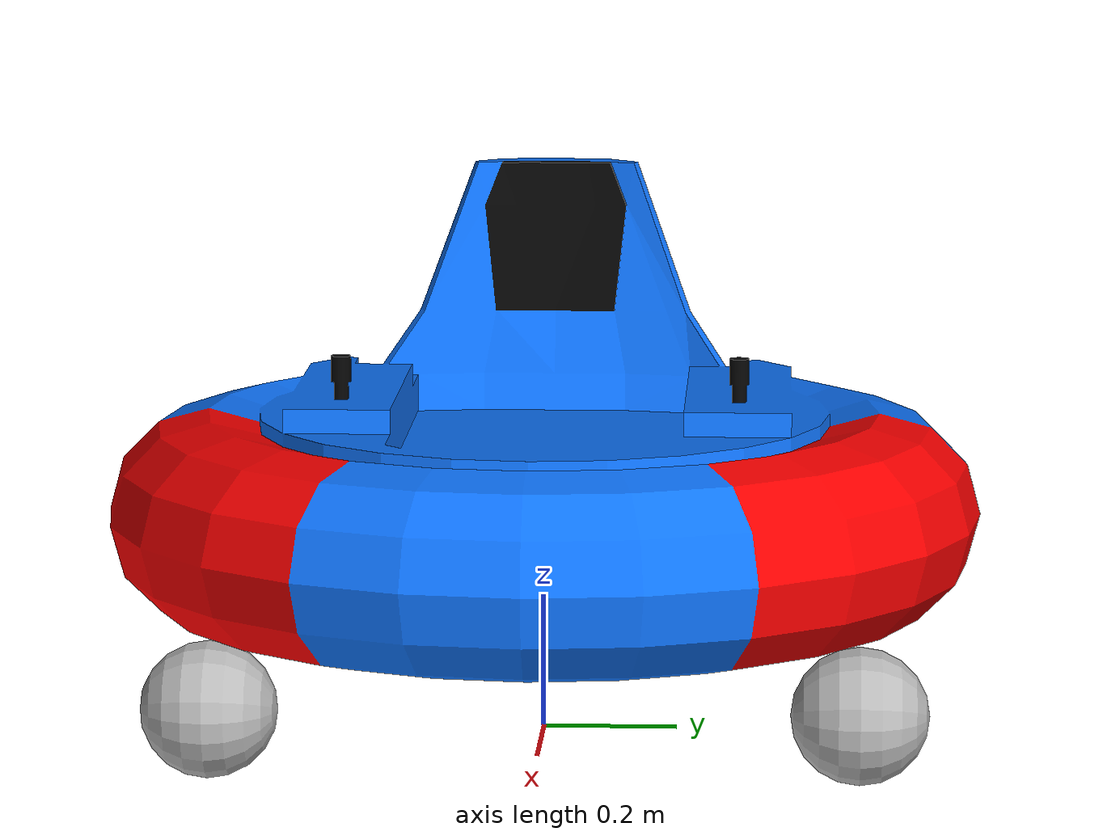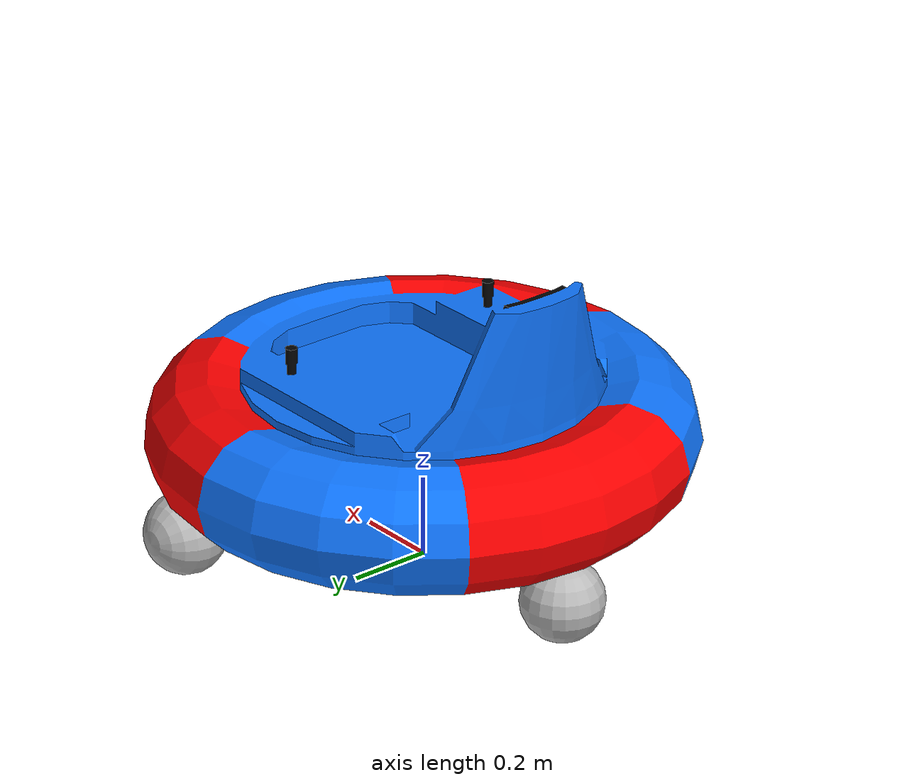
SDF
<?xml version="1.0" ?>
<sdf version="1.5">
    <model name="light-blue-cart">
      <pose>0 0 0.18 0 0 0</pose>
      <link name="cart">
          <inertial>
              <mass>50</mass>
          </inertial>
          <visual name="visual">
              <geometry>
                  <mesh><uri>file://light-blue-cart/meshes/TorusCart_lightblue_red.dae</uri></mesh>
              </geometry>
          </visual>
          <collision name="collision-cart">
              <pose>0 0 0.25 0 0 0</pose>
              <geometry>
                  <cylinder>
                      <radius>0.6</radius>
                      <length>0.75</length>
                  </cylinder>
              </geometry>
          </collision>
      </link>

      <link name='caster'>
        <pose>-0.5 0 -0.09 0 0 0</pose>
        <inertial>
          <mass>1</mass>
          <inertia>
            <ixx>0.1</ixx>
            <ixy>0</ixy>
            <ixz>0</ixz>
            <iyy>0.1</iyy>
            <iyz>0</iyz>
            <izz>0.1</izz>
          </inertia>
        </inertial>
        <visual name='visual'>
          <geometry>
            <sphere>
              <radius>0.1</radius>
            </sphere>
          </geometry>
        </visual>
        <collision name='collision'>
          <geometry>
            <sphere>
              <radius>0.1</radius>
            </sphere>
          </geometry>
        </collision>
      </link>

      <link name='right_wheel'>
        <pose>0.3 -0.47 -0.09 -1.5707 0 0</pose>
        <inertial>
          <mass>2</mass>
          <inertia>
            <ixx>0.145833</ixx>
            <ixy>0</ixy>
            <ixz>0</ixz>
            <iyy>0.145833</iyy>
            <iyz>0</iyz>
            <izz>0.125</izz>
          </inertia>
        </inertial>
        <visual name='visual'>
          <geometry>
            <sphere>
              <radius>0.1</radius>
            </sphere>
          </geometry>
        </visual>
        <collision name='collision'>
          <geometry>
            <sphere>
              <radius>0.1</radius>
            </sphere>
          </geometry>
          <surface>
            <friction>
              <ode>
                <mu>1</mu>
                <mu2>1</mu2>
                <slip1>0</slip1>
                <slip2>0</slip2>
              </ode>
            </friction>
            <contact>
              <ode>
                <soft_cfm>0</soft_cfm>
                <soft_erp>0.2</soft_erp>
                <kp>1e+13</kp>
                <kd>1</kd>
                <max_vel>0.01</max_vel>
                <min_depth>0.01</min_depth>
              </ode>
            </contact>
          </surface>
        </collision>
      </link>

      <link name='left_wheel'>
        <pose>0.3 0.47 -0.09 -1.5707 0 0</pose>
        <inertial>
          <mass>2</mass>
          <inertia>
            <ixx>0.145833</ixx>
            <ixy>0</ixy>
            <ixz>0</ixz>
            <iyy>0.145833</iyy>
            <iyz>0</iyz>
            <izz>0.125</izz>
          </inertia>
        </inertial>
        <visual name='visual'>
          <geometry>
            <sphere>
              <radius>0.1</radius>
            </sphere>
          </geometry>
        </visual>
        <collision name='collision'>
          <geometry>
            <sphere>
              <radius>0.1</radius>
            </sphere>
          </geometry>
          <surface>
            <friction>
              <ode>
                <mu>1</mu>
                <mu2>1</mu2>
                <slip1>0</slip1>
                <slip2>0</slip2>
              </ode>
            </friction>
            <contact>
              <ode>
                <soft_cfm>0</soft_cfm>
                <soft_erp>0.2</soft_erp>
                <kp>1e+13</kp>
                <kd>1</kd>
                <max_vel>0.01</max_vel>
                <min_depth>0.01</min_depth>
              </ode>
            </contact>
          </surface>
        </collision>
      </link>

      <link name='camera'>
        <pose>0.1 0 .5 3.14 4 3.14</pose>
        <sensor type="camera" name="camera1">
          <update_rate>24</update_rate>
          <always_on>true</always_on>
          <camera name="head">
            <pose>0.0 0 0.05 0 1 0</pose>
            <horizontal_fov>1.3962634</horizontal_fov>
            <image>
              <width>640</width>
              <height>480</height>
              <format>R8G8B8</format>
            </image>
            <clip>
              <near>0.02</near>
              <far>750</far>
            </clip>
            <noise>
              <type>gaussian</type>
              <mean>0.0</mean>
              <stddev>0.007</stddev>
            </noise>
          </camera>
          <plugin name="camera_controller" filename="libgazebo_ros_camera.so">
            <ros>
              <namespace>front_camera</namespace>
            </ros>
          </plugin>
        </sensor>
      </link>

      <joint name='left_wheel_joint' type='revolute'>
        <parent>cart</parent>
        <child>left_wheel</child>
        <axis>
          <xyz>0 0 1</xyz>
          <limit>
            <lower>-1.79769e+308</lower>
            <upper>1.79769e+308</upper>
          </limit>
        </axis>
      </joint>

      <joint name='right_wheel_joint' type='revolute'>
        <parent>cart</parent>
        <child>right_wheel</child>
        <axis>
          <xyz>0 0 1</xyz>
          <limit>
            <lower>-1.79769e+308</lower>
            <upper>1.79769e+308</upper>
          </limit>
        </axis>
      </joint>

      <joint name='caster_wheel' type='ball'>
        <parent>cart</parent>
        <child>caster</child>
      </joint>

      <joint name='camera_joint' type='fixed'>
        <parent>cart</parent>
        <child>camera</child>
      </joint>

      <plugin name='diff_drive' filename='libgazebo_ros_diff_drive.so'>

        <ros>
          <namespace>/lblue</namespace>
          <remapping>cmd_vel:=cmd_lblue</remapping>
          <remapping>odom:=odom_lblue</remapping>
        </ros>

        <!-- wheels -->
        <left_joint>left_wheel_joint</left_joint>
        <right_joint>right_wheel_joint</right_joint>

        <!-- kinematics -->
        <wheel_separation>1.25</wheel_separation>
        <wheel_diameter>0.2</wheel_diameter>

        <!-- limits -->
        <max_wheel_torque>20</max_wheel_torque>
        <max_wheel_acceleration>1.0</max_wheel_acceleration>

        <!-- output -->
        <publish_odom>true</publish_odom>
        <publish_odom_tf>true</publish_odom_tf>
        <publish_wheel_tf>true</publish_wheel_tf>

        <odometry_frame>odom_red</odometry_frame>
        <robot_base_frame>chassis</robot_base_frame>

      </plugin>
    </model>
</sdf>
